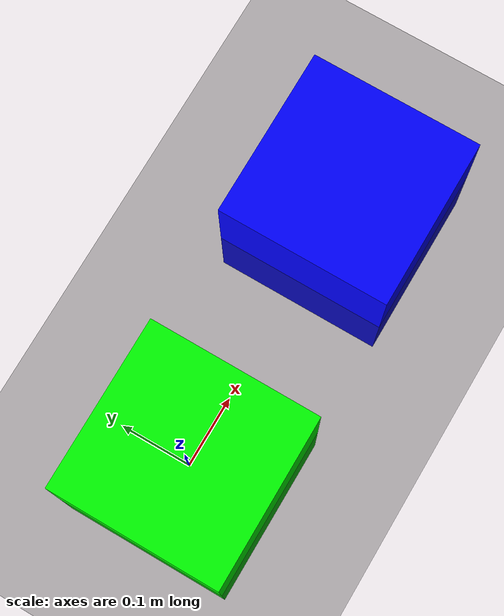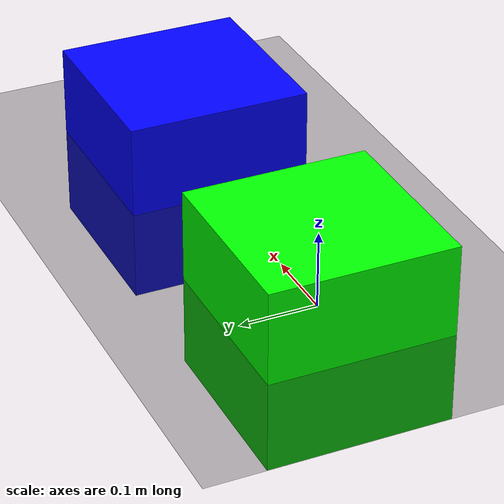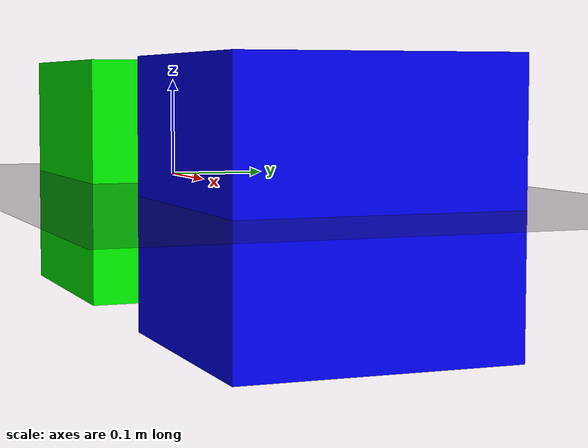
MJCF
<mujoco>
    <compiler angle="radian" coordinate="global" inertiafromgeom="true" meshdir="mesh" texturedir="textures" />
    <option gravity="0 0 -9.81" integrator="Euler" iterations="20" timestep=".01" />

    <default>
        <joint armature="0.04" damping="1" limited="true" />
        <geom conaffinity="0" condim="1" contype="0" density="10" friction=".8 .1 .1" margin="0.002" />
    </default>

    <worldbody>
        <light cutoff="100" diffuse="1 1 1" dir="-0 0 -1" directional="true" exponent="1" pos="0 0 0.0" specular=".1 .1 .1"/>

        <camera name='targeting' mode='fixed' pos='0. 0. 5.'/>

        <geom rgba="0.1 0.1 .1 1." conaffinity="1" density='0.' contype="1" condim="1" name="table" pos="0 0.0 0." size=".8 .8 0.1" type="plane" />

        <body name="obj1">
            <joint axis="1 0 0" damping="1.5" name="obj1_slidex" pos="0 0 0.05" range="-10.3213 10.3" type="slide" />
            <joint axis="0 1 0" damping="1.5" name="obj1_slidey" pos="0 0 0.05" range="-10.3213 10.3" type="slide" />
            <joint axis="0 0 1" damping="1.5" name="obj1_slidez" pos="0 0 0.05" range="-10.3213 10.3" type="slide" />
            <geom conaffinity="1" contype="1" pos="0 0 0." size="0.12 0.12 0.12" rgba="0.0  1.0 0.0 1" type="box" />
        </body>

        <body name="obj2">
            <joint axis="1 0 0" damping="1.5" name="obj2_slidex" pos="0 0 0.05" range="-10.3213 10.3" type="slide" />
            <joint axis="0 1 0" damping="1.5" name="obj2_slidey" pos="0 0 0.05" range="-10.3213 10.3" type="slide" />
            <joint axis="0 0 1" damping="1.5" name="obj2_slidez" pos="0 0 0.05" range="-10.3213 10.3" type="slide" />
            <geom conaffinity="1" contype="1" pos=".4 0. 0." size="0.12 0.12 0.12" rgba="0. 0. 1.0 1" type="box" />
        </body>

    </worldbody>

    <actuator>

        <motor joint="obj1_slidex" gear="18"/>
        <motor joint="obj1_slidey" gear="18"/>
        <motor joint="obj1_slidez" gear="18"/>

        <motor joint="obj2_slidex" gear="18"/>
        <motor joint="obj2_slidey" gear="18"/>
        <motor joint="obj2_slidez" gear="18"/>
    </actuator>

</mujoco>
